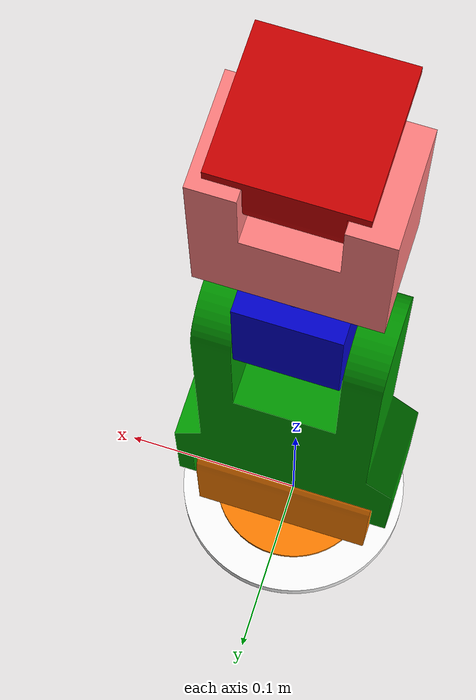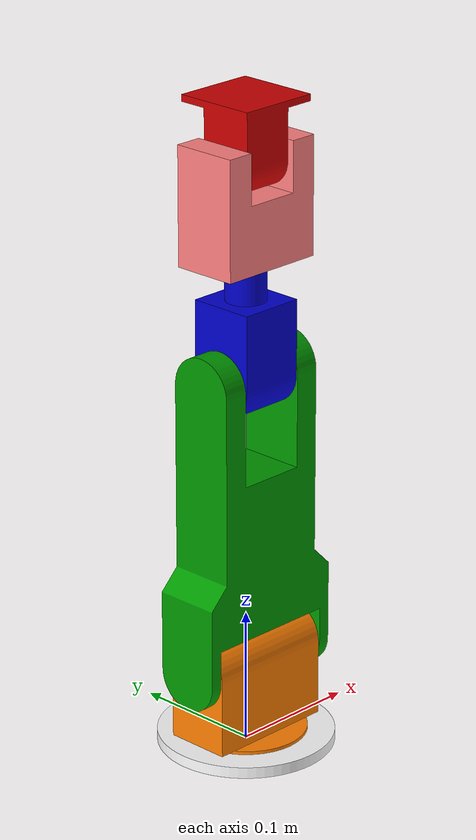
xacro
<?xml version="1.0"?>
<robot name="oparm" xmlns:xacro="http://ros.org/wiki/xacro">

  <!-- Import RViz colors -->
  <xacro:include filename="$(find oparm_description)/urdf/materials.xacro"/>
  <!-- Import Gazebo settings -->
  <xacro:include filename="$(find oparm_description)/urdf/oparm.gazebo.xacro"/>

	<!-- Properties -->
	<xacro:property name="pi" value="3.1415926"/>

  <!-- Transmission macro -->
  <xacro:macro name="SimpleTransmission" params="joint n">
    <transmission name="tran${n}">
      <type>transmission_interface/SimpleTransmission</type>
      <joint name="${joint}">
        <hardwareInterface>hardware_interface/EffortJointInterface</hardwareInterface>
      </joint>
      <actuator name="motor${n}">
        <hardwareInterface>hardware_interface/EffortJointInterface</hardwareInterface>
        <mechanicalReduction>1</mechanicalReduction>
      </actuator>
    </transmission>
  </xacro:macro>

  <!-- World -->
  <link name="world">
  </link>

  <!-- World fixed joint -->
  <joint name="world_fixed" type="fixed">
    <origin xyz="0 0 0" rpy="0 0 0"/>
    <parent link="world"/>
    <child link="base"/>
  </joint>

  <!-- Base -->
  <link name="base">
    <visual>
      <origin xyz="0 0 0" rpy="0 0 0"/>
        <geometry>
          <mesh filename="package://oparm_description/meshes/base.stl" scale="0.001 0.001 0.001"/>
        </geometry>
        <material name="white"/>
    </visual>

    <collision>
      <origin xyz="0 0 0" rpy="0 0 0"/>
      <geometry>
        <mesh filename="package://oparm_description/meshes/base.stl" scale="0.001 0.001 0.001"/>
      </geometry>
    </collision>

    <inertial>
      <origin xyz="0.0 0.0 4.25e-03"/>
      <mass value="1.1846356e-01"/>
      <inertia ixx="2.5025428e-04" ixy="0.0" ixz="0.0"
               iyy="1.2584039e-04" iyz="0.0"
               izz="1.2584039e-04"/>
    </inertial>
  </link>

  <!-- Joint 1 -->
	<!-- ROBOTIS Dynamixel MX-106 -->
  <joint name="joint1" type="revolute">
    <parent link="base"/>
    <child link="link1"/>
    <origin xyz="0 0 0.0085" rpy="0 0 0"/>
    <axis xyz="0 0 1"/>
    <limit effort="8.4" velocity="0.212" lower="${-pi}" upper="${pi}"/>
  </joint>

  <!-- Transmission 1 -->
  <xacro:SimpleTransmission n="1" joint="joint1"/>

  <!-- Link 1 -->
  <link name="link1">
    <visual>
      <origin xyz="0 0 0" rpy="0 0 0"/>
      <geometry>
         <mesh filename="package://oparm_description/meshes/link1.stl" scale="0.001 0.001 0.001"/>
      </geometry>
      <material name="orange"/>
    </visual>

    <collision>
      <origin xyz="0 0 0" rpy="0 0 0"/>
      <geometry>
        <mesh filename="package://oparm_description/meshes/link1.stl" scale="0.001 0.001 0.001"/>
      </geometry>
    </collision>

    <inertial>
      <origin xyz="0.0 0.0 3.9684358e-02"/>
      <mass value="4.2165803e-01"/>
      <inertia ixx="3.1986899e-04" ixy="0.0" ixz="0.0"
               iyy="5.7833699e-04" iyz="0.0"
               izz="4.3337111e-04"/>
    </inertial>
  </link>

  <!-- Joint 2 -->
	<!-- ROBOTIS Dynamixel MX-106 (x2) -->
  <joint name="joint2" type="revolute">
    <parent link="link1"/>
    <child link="link2"/>
    <origin xyz="0 0 0.06" rpy="0 0 0"/>
    <axis xyz="1 0 0"/>
    <limit effort="16.8" velocity="0.118" lower="-1.57" upper="1.57"/>
  </joint>

  <!-- Transmission 2 -->
  <xacro:SimpleTransmission n="2" joint="joint2"/>

  <!-- Link 2 -->
  <link name="link2">
    <visual>
      <origin xyz="0 0 0" rpy="0 0 0"/>
      <geometry>
         <mesh filename="package://oparm_description/meshes/link2.stl" scale="0.001 0.001 0.001"/>
      </geometry>
      <material name="green"/>
    </visual>

    <collision>
      <origin xyz="0 0 0" rpy="0 0 0"/>
      <geometry>
        <mesh filename="package://oparm_description/meshes/link2.stl" scale="0.001 0.001 0.001"/>
      </geometry>
    </collision>

    <inertial>
      <origin xyz="0.0 0.0 1.0033384e-01"/>
      <mass value="8.4958426e-01"/>
      <inertia ixx="3.1351289e-03" ixy="0.0" ixz="0.0"
               iyy="3.8828211e-03" iyz="0.0"
               izz="-1.0956725e-03"/>
    </inertial>
  </link>

  <!-- Joint 3 -->
	<!-- ROBOTIS Dynamixel MX-106 -->
  <joint name="joint3" type="revolute">
    <parent link="link2"/>
    <child link="link3"/>
    <origin xyz="0 0 0.215" rpy="0 0 0"/>
    <axis xyz="1 0 0"/>
    <limit effort="8.4" velocity="0.118" lower="-1.75" upper="1.75"/>
  </joint>

  <!-- Transmission 3 -->
  <xacro:SimpleTransmission n="3" joint="joint3"/>

  <!-- Link 3 -->
  <link name="link3">
    <visual>
      <origin xyz="0 0 0" rpy="0 0 0"/>
      <geometry>
         <mesh filename="package://oparm_description/meshes/link3.stl" scale="0.001 0.001 0.001"/>
      </geometry>
      <material name="blue"/>
    </visual>

    <collision>
      <origin xyz="0 0 0" rpy="0 0 0"/>
      <geometry>
        <mesh filename="package://oparm_description/meshes/link3.stl" scale="0.001 0.001 0.001"/>
      </geometry>
    </collision>

    <inertial>
      <origin xyz="0.0 0.0 2.3397032e-02"/>
      <mass value="2.2194839e-01"/>
      <inertia ixx="1.9511023e-04" ixy="0.0" ixz="0.0"
               iyy="1.9779470e-04" iyz="0.0"
               izz="8.3472948e-05"/>
    </inertial>
  </link>

  <!-- Joint 4 -->
	<!-- ROBOTIS Dynamixel MX-28 -->
  <joint name="joint4" type="revolute">
    <parent link="link3"/>
    <child link="link4"/>
    <origin xyz="0 0 0.085" rpy="0 0 0"/>
    <axis xyz="0 0 1"/>
    <limit effort="2.5" velocity="0.276" lower="${-pi}" upper="${pi}"/>
  </joint>

  <!-- Transmission 4 -->
  <xacro:SimpleTransmission n="4" joint="joint4"/>

  <!-- Link 4 -->
  <link name="link4">
    <visual>
      <origin xyz="0 0 0" rpy="0 0 0"/>
      <geometry>
         <mesh filename="package://oparm_description/meshes/link4.stl" scale="0.001 0.001 0.001"/>
      </geometry>
      <material name="pink"/>
    </visual>

    <collision>
      <origin xyz="0 0 0" rpy="0 0 0"/>
      <geometry>
        <mesh filename="package://oparm_description/meshes/link4.stl" scale="0.001 0.001 0.001"/>
      </geometry>
    </collision>

    <inertial>
      <origin xyz="0.0 0.0 3.7163357e-02"/>
      <mass value="2.9812125e-01"/>
      <inertia ixx="2.3173010e-04" ixy="0.0" ixz="0.0"
               iyy="3.7059083e-04" iyz="0.0"
               izz="2.6307792e-04"/>
    </inertial>
  </link>

  <!-- Joint 5-->
	<!-- ROBOTIS Dynamixel MX-28 -->
  <joint name="joint5" type="revolute">
    <parent link="link4"/>
    <child link="link5"/>
    <origin xyz="0 0 0.0725" rpy="0 0 0"/>
    <axis xyz="1 0 0"/>
    <limit effort="2.5" velocity="0.118" lower="-1.57" upper="1.57"/>
  </joint>

  <!-- Transmission 5 -->
  <xacro:SimpleTransmission n="5" joint="joint5"/>

  <!-- Link 5 -->
  <link name="link5">
    <visual>
      <origin xyz="0 0 0" rpy="0 0 0"/>
      <geometry>
         <mesh filename="package://oparm_description/meshes/link5.stl" scale="0.001 0.001 0.001"/>
      </geometry>
      <material name="red"/>
    </visual>

    <collision>
      <origin xyz="0 0 0" rpy="0 0 0"/>
      <geometry>
        <mesh filename="package://oparm_description/meshes/link5.stl" scale="0.001 0.001 0.001"/>
      </geometry>
    </collision>

    <inertial>
      <origin xyz="0.0 0.0 1.8350632e-02"/>
      <mass value="1.2109134e-01"/>
      <inertia ixx="6.6737478e-05" ixy="0.0" ixz="0.0"
               iyy="6.7027298e-05" iyz="0.0"
               izz="-3.9548898e-05"/>
    </inertial>
  </link>

</robot>

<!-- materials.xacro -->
<robot>

  <material name="black">
    <color rgba="0.0 0.0 0.0 1.0"/>
  </material>

  <material name="white">
    <color rgba="1.0 1.0 1.0 1.0"/>
  </material>

  <material name="red">
    <color rgba="0.8 0.0 0.0 1.0"/>
  </material>

  <material name="blue">
    <color rgba="0.0 0.0 0.8 1.0"/>
  </material>

  <material name="gray">
    <color rgba="0.4 0.4 0.4 1.0"/>
  </material>

  <material name="orange">
    <color rgba="${255/255} ${127/255} 0.0 1.0"/>
  </material>

  <material name="pink">
    <color rgba="${255/255} ${127/255} ${127/255} 1.0"/>
  </material>

  <material name="green">
    <color rgba="${1/255} ${152/255} ${1/255} 1.0"/>
  </material>

</robot>
